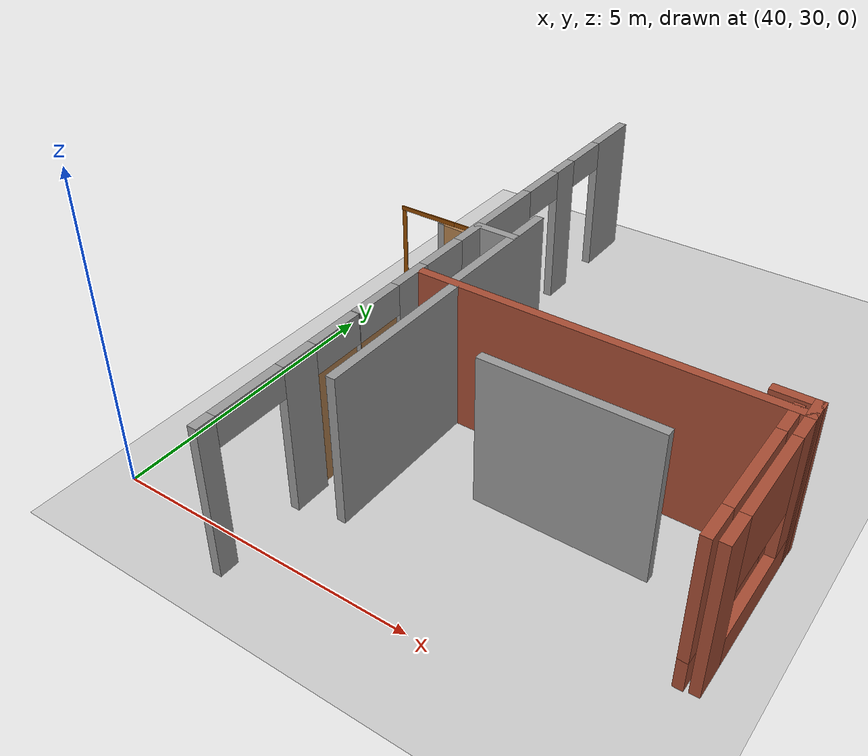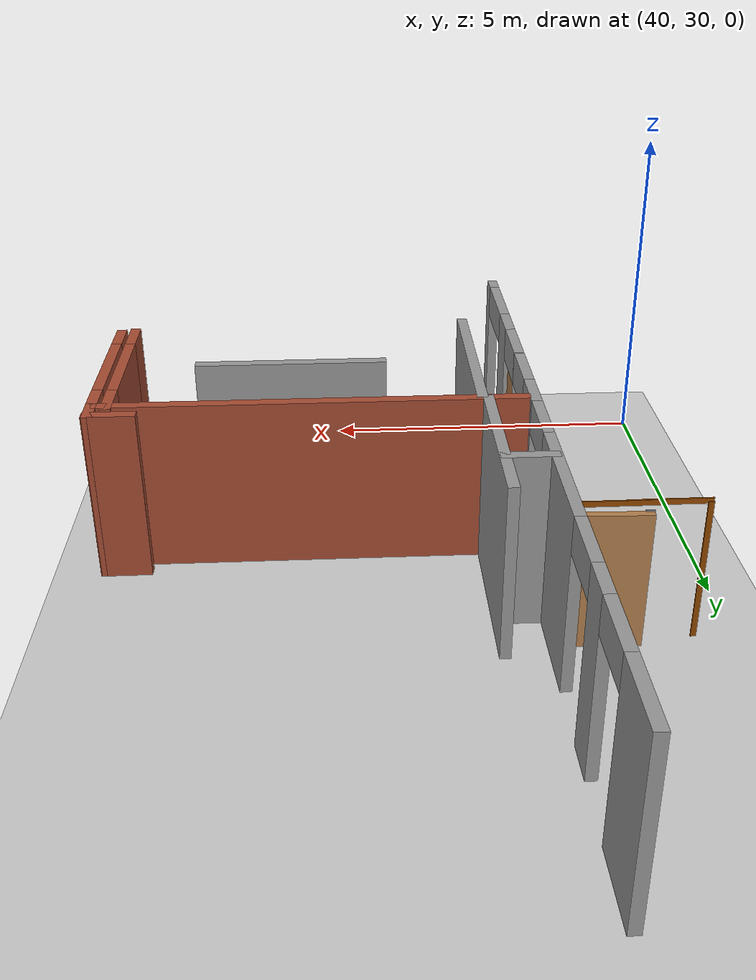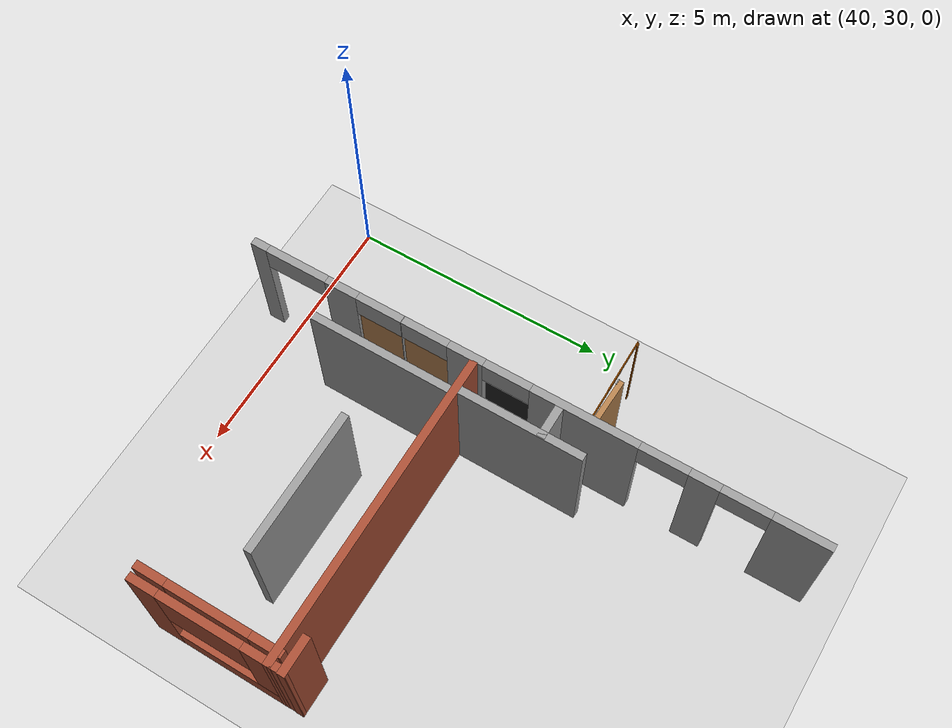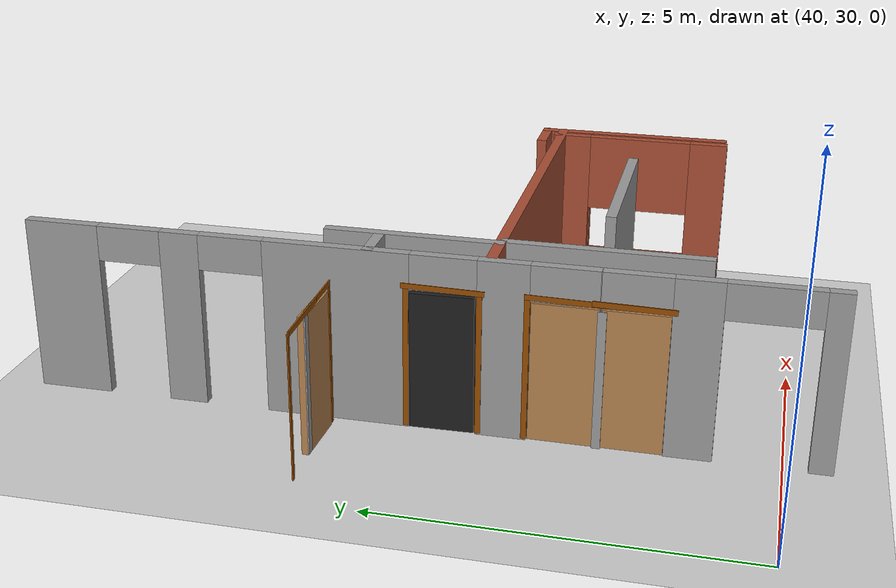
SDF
<sdf version="1.6">
 <world name="default">
  <model name="ground_plane">
   <static>1</static>
   <link name="link">
    <collision name="collision">
     <geometry><plane><normal>0 0 1</normal><size>100 100</size></plane></geometry>
     <surface><friction><ode><mu>100</mu><mu2>50</mu2></ode></friction></surface>
    </collision>
    <visual name="visual">
     <cast_shadows>0</cast_shadows>
     <geometry><plane><normal>0 0 1</normal><size>100 100</size></plane></geometry>
     <material>
      <script><uri>file://media/materials/scripts/gazebo.material</uri><name>Gazebo/Grey</name></script>
     </material>
    </visual>
   </link>
  </model>
  <model name="CVSSP">
   <pose>23.8714 24.094 0 0 -0 0</pose>
   <link name="Wall_213">
    <pose>24.4337 8.48333 0 0 -0 1.5708</pose>
    <visual name="Wall_213_Visual_0">
     <pose>-1.07539 0 1.25 0 -0 0</pose>
     <geometry><box><size>0.546615 0.15 2.5</size></box></geometry>
     <material>
      <script><uri>file://media/materials/scripts/gazebo.material</uri><name>Gazebo/Bricks</name></script>
      <ambient>1 1 1 1</ambient>
     </material>
    </visual>
    <collision name="Wall_213_Collision_0">
     <geometry><box><size>0.546615 0.15 2.5</size></box></geometry>
     <pose>-1.07539 0 1.25 0 -0 0</pose>
    </collision>
    <visual name="Wall_213_Visual_1">
     <pose>0.273308 0 0.25 0 -0 0</pose>
     <geometry><box><size>2.15078 0.15 0.5</size></box></geometry>
     <material>
      <script><uri>file://media/materials/scripts/gazebo.material</uri><name>Gazebo/Bricks</name></script>
      <ambient>1 1 1 1</ambient>
     </material>
    </visual>
    <collision name="Wall_213_Collision_1">
     <geometry><box><size>2.15078 0.15 0.5</size></box></geometry>
     <pose>0.273308 0 0.25 0 -0 0</pose>
    </collision>
    <visual name="Wall_213_Visual_2">
     <pose>1.06771 0 1.5 0 -0 0</pose>
     <geometry><box><size>0.561981 0.15 2</size></box></geometry>
     <material>
      <script><uri>file://media/materials/scripts/gazebo.material</uri><name>Gazebo/Bricks</name></script>
      <ambient>1 1 1 1</ambient>
     </material>
    </visual>
    <collision name="Wall_213_Collision_2">
     <geometry><box><size>0.561981 0.15 2</size></box></geometry>
     <pose>1.06771 0 1.5 0 -0 0</pose>
    </collision>
    <visual name="Wall_213_Visual_3">
     <pose>-0.007683 0 1.9 0 -0 0</pose>
     <geometry><box><size>1.5888 0.15 1.2</size></box></geometry>
     <material>
      <script><uri>file://media/materials/scripts/gazebo.material</uri><name>Gazebo/Bricks</name></script>
      <ambient>1 1 1 1</ambient>
     </material>
    </visual>
    <collision name="Wall_213_Collision_3">
     <geometry><box><size>1.5888 0.15 1.2</size></box></geometry>
     <pose>-0.007683 0 1.9 0 -0 0</pose>
    </collision>
   </link>
   <link name="Wall_214">
    <collision name="Wall_214_Collision">
     <geometry><box><size>5.97381 0.15 2.5</size></box></geometry>
     <pose>0 0 1.25 0 -0 0</pose>
    </collision>
    <visual name="Wall_214_Visual">
     <pose>0 0 1.25 0 -0 0</pose>
     <geometry><box><size>5.97381 0.15 2.5</size></box></geometry>
     <material>
      <script><uri>file://media/materials/scripts/gazebo.material</uri><name>Gazebo/Bricks</name></script>
      <ambient>0.588235 0.588235 0.588235 1</ambient>
     </material>
    </visual>
    <pose>21.5218 9.76806 0 0 -0 3.14006</pose>
   </link>
   <link name="Wall_220">
    <pose>24.2299 8.49507 0 0 0 -1.5708</pose>
    <visual name="Wall_220_Visual_0">
     <pose>-1.08519 0 1.25 0 -0 0</pose>
     <geometry><box><size>0.603103 0.15 2.5</size></box></geometry>
     <material>
      <script><uri>file://media/materials/scripts/gazebo.material</uri><name>Gazebo/Bricks</name></script>
      <ambient>1 1 1 1</ambient>
     </material>
    </visual>
    <collision name="Wall_220_Collision_0">
     <geometry><box><size>0.603103 0.15 2.5</size></box></geometry>
     <pose>-1.08519 0 1.25 0 -0 0</pose>
    </collision>
    <visual name="Wall_220_Visual_1">
     <pose>0.301552 0 0.25 0 -0 0</pose>
     <geometry><box><size>2.17039 0.15 0.5</size></box></geometry>
     <material>
      <script><uri>file://media/materials/scripts/gazebo.material</uri><name>Gazebo/Bricks</name></script>
      <ambient>1 1 1 1</ambient>
     </material>
    </visual>
    <collision name="Wall_220_Collision_1">
     <geometry><box><size>2.17039 0.15 0.5</size></box></geometry>
     <pose>0.301552 0 0.25 0 -0 0</pose>
    </collision>
    <visual name="Wall_220_Visual_2">
     <pose>1.09595 0 1.5 0 -0 0</pose>
     <geometry><box><size>0.581584 0.15 2</size></box></geometry>
     <material>
      <script><uri>file://media/materials/scripts/gazebo.material</uri><name>Gazebo/Bricks</name></script>
      <ambient>1 1 1 1</ambient>
     </material>
    </visual>
    <collision name="Wall_220_Collision_2">
     <geometry><box><size>0.581584 0.15 2</size></box></geometry>
     <pose>1.09595 0 1.5 0 -0 0</pose>
    </collision>
    <visual name="Wall_220_Visual_3">
     <pose>0.010759 0 1.9 0 -0 0</pose>
     <geometry><box><size>1.5888 0.15 1.2</size></box></geometry>
     <material>
      <script><uri>file://media/materials/scripts/gazebo.material</uri><name>Gazebo/Bricks</name></script>
      <ambient>1 1 1 1</ambient>
     </material>
    </visual>
    <collision name="Wall_220_Collision_3">
     <geometry><box><size>1.5888 0.15 1.2</size></box></geometry>
     <pose>0.010759 0 1.9 0 -0 0</pose>
    </collision>
   </link>
   <link name="Wall_224">
    <collision name="Wall_224_Collision">
     <geometry><box><size>2.81007 0.15 2.5</size></box></geometry>
     <pose>0 0 1.25 0 -0 0</pose>
    </collision>
    <visual name="Wall_224_Visual">
     <pose>0 0 1.25 0 -0 0</pose>
     <geometry><box><size>2.81007 0.15 2.5</size></box></geometry>
     <material>
      <script><uri>file://media/materials/scripts/gazebo.material</uri><name>Gazebo/Grey</name></script>
      <ambient>0.588235 0.588235 0.588235 1</ambient>
     </material>
    </visual>
    <pose>19.1823 8.38344 0 0 -0 1.56755</pose>
   </link>
   <link name="Wall_235">
    <collision name="Wall_235_Collision">
     <geometry><box><size>2.48045 0.15 2.5</size></box></geometry>
     <pose>0 0 1.25 0 -0 0</pose>
    </collision>
    <visual name="Wall_235_Visual">
     <pose>0 0 1.25 0 -0 0</pose>
     <geometry><box><size>2.48045 0.15 2.5</size></box></geometry>
     <material>
      <script><uri>file://media/materials/scripts/gazebo.material</uri><name>Gazebo/Grey</name></script>
      <ambient>1 1 1 1</ambient>
     </material>
    </visual>
    <pose>19.1127 10.9507 0 0 0 -1.57453</pose>
   </link>
   <link name="Wall_237">
    <collision name="Wall_237_Collision">
     <geometry><box><size>0.75 0.15 2.5</size></box></geometry>
     <pose>0 0 1.25 0 -0 0</pose>
    </collision>
    <visual name="Wall_237_Visual">
     <pose>0 0 1.25 0 -0 0</pose>
     <geometry><box><size>0.75 0.15 2.5</size></box></geometry>
     <material>
      <script><uri>file://media/materials/scripts/gazebo.material</uri><name>Gazebo/Grey</name></script>
      <ambient>1 1 1 1</ambient>
     </material>
    </visual>
    <pose>18.798 11.4046 0 0 -0 0</pose>
   </link>
   <link name="Wall_239">
    <collision name="Wall_239_Collision">
     <geometry><box><size>0.410984 0.15 2.5</size></box></geometry>
     <pose>0 0 1.25 0 -0 0</pose>
    </collision>
    <visual name="Wall_239_Visual">
     <pose>0 0 1.25 0 -0 0</pose>
     <geometry><box><size>0.410984 0.15 2.5</size></box></geometry>
     <material>
      <script><uri>file://media/materials/scripts/gazebo.material</uri><name>Gazebo/Bricks</name></script>
      <ambient>1 1 1 1</ambient>
     </material>
    </visual>
    <pose>24.4308 9.89408 0 0 -0 1.593</pose>
   </link>
   <link name="Wall_240">
    <collision name="Wall_240_Collision">
     <geometry><box><size>0.714004 0.15 2.5</size></box></geometry>
     <pose>0 0 1.25 0 -0 0</pose>
    </collision>
    <visual name="Wall_240_Visual">
     <pose>0 0 1.25 0 -0 0</pose>
     <geometry><box><size>0.714004 0.15 2.5</size></box></geometry>
     <material>
      <script><uri>file://media/materials/scripts/gazebo.material</uri><name>Gazebo/Bricks</name></script>
      <ambient>1 1 1 1</ambient>
     </material>
    </visual>
    <pose>24.156 10.0241 0 0 0 -3.1399</pose>
   </link>
   <link name="Wall_594">
    <collision name="Wall_594_Collision">
     <geometry><box><size>2.75 0.15 2.5</size></box></geometry>
     <pose>0 0 1.25 0 -0 0</pose>
    </collision>
    <visual name="Wall_594_Visual">
     <pose>0 0 1.25 0 -0 0</pose>
     <geometry><box><size>2.75 0.15 2.5</size></box></geometry>
     <material>
      <script><uri>file://media/materials/scripts/gazebo.material</uri><name>Gazebo/Grey</name></script>
      <ambient>0.588235 0.588235 0.588235 1</ambient>
     </material>
    </visual>
    <pose>21.8103 8.48184 0 0 -0 0</pose>
   </link>
   <link name="Wall_78">
    <pose>18.474 10.7662 0 0 0 -1.57021</pose>
    <visual name="Wall_78_Visual_0">
     <pose>-4.96653 0 1.25 0 -0 0</pose>
     <geometry><box><size>1.05938 0.15 2.5</size></box></geometry>
     <material>
      <script><uri>file://media/materials/scripts/gazebo.material</uri><name>Gazebo/Grey</name></script>
      <ambient>1 1 1 1</ambient>
     </material>
    </visual>
    <collision name="Wall_78_Collision_0">
     <geometry><box><size>1.05938 0.15 2.5</size></box></geometry>
     <pose>-4.96653 0 1.25 0 -0 0</pose>
    </collision>
    <visual name="Wall_78_Visual_1">
     <pose>-3.25946 0 1.25 0 -0 0</pose>
     <geometry><box><size>0.554758 0.15 2.5</size></box></geometry>
     <material>
      <script><uri>file://media/materials/scripts/gazebo.material</uri><name>Gazebo/Grey</name></script>
      <ambient>1 1 1 1</ambient>
     </material>
    </visual>
    <collision name="Wall_78_Collision_1">
     <geometry><box><size>0.554758 0.15 2.5</size></box></geometry>
     <pose>-3.25946 0 1.25 0 -0 0</pose>
    </collision>
    <visual name="Wall_78_Visual_2">
     <pose>-1.07517 0 1.25 0 -0 0</pose>
     <geometry><box><size>2.01383 0.15 2.5</size></box></geometry>
     <material>
      <script><uri>file://media/materials/scripts/gazebo.material</uri><name>Gazebo/Grey</name></script>
      <ambient>1 1 1 1</ambient>
     </material>
    </visual>
    <collision name="Wall_78_Collision_2">
     <geometry><box><size>2.01383 0.15 2.5</size></box></geometry>
     <pose>-1.07517 0 1.25 0 -0 0</pose>
    </collision>
    <visual name="Wall_78_Visual_3">
     <pose>1.17751 0 1.25 0 -0 0</pose>
     <geometry><box><size>0.691523 0.15 2.5</size></box></geometry>
     <material>
      <script><uri>file://media/materials/scripts/gazebo.material</uri><name>Gazebo/Grey</name></script>
      <ambient>1 1 1 1</ambient>
     </material>
    </visual>
    <collision name="Wall_78_Collision_3">
     <geometry><box><size>0.691523 0.15 2.5</size></box></geometry>
     <pose>1.17751 0 1.25 0 -0 0</pose>
    </collision>
    <visual name="Wall_78_Visual_4">
     <pose>2.42807 0 1.25 0 -0 0</pose>
     <geometry><box><size>0.009597 0.15 2.5</size></box></geometry>
     <material>
      <script><uri>file://media/materials/scripts/gazebo.material</uri><name>Gazebo/Grey</name></script>
      <ambient>1 1 1 1</ambient>
     </material>
    </visual>
    <collision name="Wall_78_Collision_4">
     <geometry><box><size>0.009597 0.15 2.5</size></box></geometry>
     <pose>2.42807 0 1.25 0 -0 0</pose>
    </collision>
    <visual name="Wall_78_Visual_5">
     <pose>3.64808 0 1.25 0 -0 0</pose>
     <geometry><box><size>0.630422 0.15 2.5</size></box></geometry>
     <material>
      <script><uri>file://media/materials/scripts/gazebo.material</uri><name>Gazebo/Grey</name></script>
      <ambient>1 1 1 1</ambient>
     </material>
    </visual>
    <collision name="Wall_78_Collision_5">
     <geometry><box><size>0.630422 0.15 2.5</size></box></geometry>
     <pose>3.64808 0 1.25 0 -0 0</pose>
    </collision>
    <visual name="Wall_78_Visual_6">
     <pose>5.33714 0 1.25 0 -0 0</pose>
     <geometry><box><size>0.318161 0.15 2.5</size></box></geometry>
     <material>
      <script><uri>file://media/materials/scripts/gazebo.material</uri><name>Gazebo/Grey</name></script>
      <ambient>1 1 1 1</ambient>
     </material>
    </visual>
    <collision name="Wall_78_Collision_6">
     <geometry><box><size>0.318161 0.15 2.5</size></box></geometry>
     <pose>5.33714 0 1.25 0 -0 0</pose>
    </collision>
    <visual name="Wall_78_Visual_7">
     <pose>-3.98684 0 2.25 0 -0 0</pose>
     <geometry><box><size>0.9 0.15 0.5</size></box></geometry>
     <material>
      <script><uri>file://media/materials/scripts/gazebo.material</uri><name>Gazebo/Grey</name></script>
      <ambient>1 1 1 1</ambient>
     </material>
    </visual>
    <collision name="Wall_78_Collision_7">
     <geometry><box><size>0.9 0.15 0.5</size></box></geometry>
     <pose>-3.98684 0 2.25 0 -0 0</pose>
    </collision>
    <visual name="Wall_78_Visual_8">
     <pose>-2.53208 0 2.25 0 -0 0</pose>
     <geometry><box><size>0.9 0.15 0.5</size></box></geometry>
     <material>
      <script><uri>file://media/materials/scripts/gazebo.material</uri><name>Gazebo/Grey</name></script>
      <ambient>1 1 1 1</ambient>
     </material>
    </visual>
    <collision name="Wall_78_Collision_8">
     <geometry><box><size>0.9 0.15 0.5</size></box></geometry>
     <pose>-2.53208 0 2.25 0 -0 0</pose>
    </collision>
    <visual name="Wall_78_Visual_9">
     <pose>0.381748 0 2.25 0 -0 0</pose>
     <geometry><box><size>0.9 0.15 0.5</size></box></geometry>
     <material>
      <script><uri>file://media/materials/scripts/gazebo.material</uri><name>Gazebo/Grey</name></script>
      <ambient>1 1 1 1</ambient>
     </material>
    </visual>
    <collision name="Wall_78_Collision_9">
     <geometry><box><size>0.9 0.15 0.5</size></box></geometry>
     <pose>0.381748 0 2.25 0 -0 0</pose>
    </collision>
    <visual name="Wall_78_Visual_10">
     <pose>1.97327 0 2.25 0 -0 0</pose>
     <geometry><box><size>0.9 0.15 0.5</size></box></geometry>
     <material>
      <script><uri>file://media/materials/scripts/gazebo.material</uri><name>Gazebo/Grey</name></script>
      <ambient>1 1 1 1</ambient>
     </material>
    </visual>
    <collision name="Wall_78_Collision_10">
     <geometry><box><size>0.9 0.15 0.5</size></box></geometry>
     <pose>1.97327 0 2.25 0 -0 0</pose>
    </collision>
    <visual name="Wall_78_Visual_11">
     <pose>2.88287 0 2.25 0 -0 0</pose>
     <geometry><box><size>0.9 0.15 0.5</size></box></geometry>
     <material>
      <script><uri>file://media/materials/scripts/gazebo.material</uri><name>Gazebo/Grey</name></script>
      <ambient>1 1 1 1</ambient>
     </material>
    </visual>
    <collision name="Wall_78_Collision_11">
     <geometry><box><size>0.9 0.15 0.5</size></box></geometry>
     <pose>2.88287 0 2.25 0 -0 0</pose>
    </collision>
    <visual name="Wall_78_Visual_12">
     <pose>4.57067 0 2.25 0 -0 0</pose>
     <geometry><box><size>1.21477 0.15 0.5</size></box></geometry>
     <material>
      <script><uri>file://media/materials/scripts/gazebo.material</uri><name>Gazebo/Grey</name></script>
      <ambient>1 1 1 1</ambient>
     </material>
    </visual>
    <collision name="Wall_78_Collision_12">
     <geometry><box><size>1.21477 0.15 0.5</size></box></geometry>
     <pose>4.57067 0 2.25 0 -0 0</pose>
    </collision>
   </link>
   <static>1</static>
  </model>
  <model name="basic_ply_door_corrected_clone_clone_clone_1">
   <link name="link">
    <pose>-0 0 1.00385 0 -0 0</pose>
    <inertial>
     <mass>0.5167</mass>
     <inertia>
      <ixx>0.00086117</ixx>
      <ixy>0</ixy>
      <ixz>0</ixz>
      <iyy>0.00086117</iyy>
      <iyz>0</iyz>
      <izz>0.00086117</izz>
     </inertia>
    </inertial>
    <gravity>0</gravity>
    <visual name="visual">
     <geometry><box><size>0.88 0.1 1.96</size></box></geometry>
     <material>
      <script><uri>file://media/materials/scripts/gazebo.material</uri><name>Gazebo/Wood</name></script>
      <shader type="pixel"><normal_map>__default__</normal_map></shader>
      <ambient>1 1 1 1</ambient>
      <diffuse>1 1 1 1</diffuse>
      <specular>0.2 0.2 0.2 1</specular>
      <emissive>0 0 0 1</emissive>
     </material>
    </visual>
    <collision name="collision">
     <geometry><box><size>0.88 0.1 1.96</size></box></geometry>
     <surface>
      <friction>
       <ode><mu>1</mu><mu2>1</mu2><fdir1>0 0 0</fdir1><slip1>0</slip1><slip2>0</slip2></ode>
       <torsional>
        <coefficient>1</coefficient>
        <patch_radius>0</patch_radius>
        <surface_radius>0.01</surface_radius>
        <use_patch_radius>0</use_patch_radius>
        <ode><slip>0</slip></ode>
       </torsional>
      </friction>
      <bounce><restitution_coefficient>0</restitution_coefficient><threshold>1e+06</threshold></bounce>
      <contact>
       <collide_without_contact>0</collide_without_contact>
       <collide_without_contact_bitmask>1</collide_without_contact_bitmask>
       <collide_bitmask>1</collide_bitmask>
       <ode>
        <soft_cfm>0</soft_cfm>
        <soft_erp>0.2</soft_erp>
        <kp>100000</kp>
        <kd>100</kd>
        <max_vel>100</max_vel>
        <min_depth>0.001</min_depth>
       </ode>
       <bullet>
        <split_impulse>1</split_impulse>
        <split_impulse_penetration_threshold>-0.01</split_impulse_penetration_threshold>
        <soft_cfm>0</soft_cfm>
        <soft_erp>0.2</soft_erp>
        <kp>100000</kp>
        <kd>100</kd>
       </bullet>
      </contact>
     </surface>
    </collision>
   </link>
   <static>1</static>
   <pose>41.6497 36.0398 -0.036806 0 0 -0.036583</pose>
  </model>
  <model name="metal_door">
   <link name="link">
    <inertial>
     <mass>1</mass>
     <inertia>
      <ixx>0.166667</ixx>
      <ixy>0</ixy>
      <ixz>0</ixz>
      <iyy>0.166667</iyy>
      <iyz>0</iyz>
      <izz>0.166667</izz>
     </inertia>
    </inertial>
    <gravity>0</gravity>
    <visual name="visual">
     <geometry><box><size>0.100297 0.870347 1.94787</size></box></geometry>
     <material>
      <script><name>Gazebo/Black</name><uri>file://media/materials/scripts/gazebo.material</uri></script>
      <shader type="pixel"><normal_map>__default__</normal_map></shader>
      <ambient>0.01 0.001 0.001 1</ambient>
      <diffuse>0.7 0.7 0.7 1</diffuse>
      <specular>0.01 0.01 0.01 1</specular>
      <emissive>0 0 0 1</emissive>
     </material>
    </visual>
    <collision name="collision">
     <geometry><box><size>0.100297 0.870347 1.94787</size></box></geometry>
     <surface>
      <friction>
       <ode><mu>1</mu><mu2>1</mu2><fdir1>0 0 0</fdir1><slip1>0</slip1><slip2>0</slip2></ode>
       <torsional>
        <coefficient>1</coefficient>
        <patch_radius>0</patch_radius>
        <surface_radius>0</surface_radius>
        <use_patch_radius>1</use_patch_radius>
        <ode><slip>0</slip></ode>
       </torsional>
      </friction>
      <bounce><restitution_coefficient>0</restitution_coefficient><threshold>1e+06</threshold></bounce>
      <contact>
       <collide_without_contact>0</collide_without_contact>
       <collide_without_contact_bitmask>1</collide_without_contact_bitmask>
       <collide_bitmask>1</collide_bitmask>
       <ode>
        <soft_cfm>0</soft_cfm>
        <soft_erp>0.2</soft_erp>
        <kp>1e+13</kp>
        <kd>1</kd>
        <max_vel>0.01</max_vel>
        <min_depth>0</min_depth>
       </ode>
       <bullet>
        <split_impulse>1</split_impulse>
        <split_impulse_penetration_threshold>-0.01</split_impulse_penetration_threshold>
        <soft_cfm>0</soft_cfm>
        <soft_erp>0.2</soft_erp>
        <kp>1e+13</kp>
        <kd>1</kd>
       </bullet>
      </contact>
     </surface>
    </collision>
   </link>
   <static>1</static>
   <pose>42.2821 34.4796 1.00438 -0.004669 -0.001302 0.01235</pose>
  </model>
  <model name="basic_ply_door_corrected_clone_0_clone_clone_2">
   <link name="link">
    <pose>-0 0 1.00385 0 -0 0</pose>
    <inertial>
     <mass>0.5167</mass>
     <inertia>
      <ixx>0.00086117</ixx>
      <ixy>0</ixy>
      <ixz>0</ixz>
      <iyy>0.00086117</iyy>
      <iyz>0</iyz>
      <izz>0.00086117</izz>
     </inertia>
    </inertial>
    <gravity>0</gravity>
    <visual name="visual">
     <geometry><box><size>0.88 0.1 1.96</size></box></geometry>
     <material>
      <script><uri>file://media/materials/scripts/gazebo.material</uri><name>Gazebo/Wood</name></script>
      <shader type="pixel"><normal_map>__default__</normal_map></shader>
      <ambient>1 1 1 1</ambient>
      <diffuse>1 1 1 1</diffuse>
      <specular>0.2 0.2 0.2 1</specular>
      <emissive>0 0 0 1</emissive>
     </material>
    </visual>
    <collision name="collision">
     <geometry><box><size>0.88 0.1 1.96</size></box></geometry>
     <surface>
      <friction>
       <ode><mu>1</mu><mu2>1</mu2><fdir1>0 0 0</fdir1><slip1>0</slip1><slip2>0</slip2></ode>
       <torsional>
        <coefficient>1</coefficient>
        <patch_radius>0</patch_radius>
        <surface_radius>0.01</surface_radius>
        <use_patch_radius>0</use_patch_radius>
        <ode><slip>0</slip></ode>
       </torsional>
      </friction>
      <bounce><restitution_coefficient>0</restitution_coefficient><threshold>1e+06</threshold></bounce>
      <contact>
       <collide_without_contact>0</collide_without_contact>
       <collide_without_contact_bitmask>1</collide_without_contact_bitmask>
       <collide_bitmask>1</collide_bitmask>
       <ode>
        <soft_cfm>0</soft_cfm>
        <soft_erp>0.2</soft_erp>
        <kp>100000</kp>
        <kd>100</kd>
        <max_vel>100</max_vel>
        <min_depth>0.001</min_depth>
       </ode>
       <bullet>
        <split_impulse>1</split_impulse>
        <split_impulse_penetration_threshold>-0.01</split_impulse_penetration_threshold>
        <soft_cfm>0</soft_cfm>
        <soft_erp>0.2</soft_erp>
        <kp>100000</kp>
        <kd>100</kd>
       </bullet>
      </contact>
     </surface>
    </collision>
   </link>
   <static>1</static>
   <pose>42.3174 32.8788 -0.00101 0 -0 1.56379</pose>
  </model>
  <model name="basic_ply_door_corrected_clone_0_clone_clone_3">
   <link name="link">
    <pose>-0 0 1.00385 0 -0 0</pose>
    <inertial>
     <mass>0.5167</mass>
     <inertia>
      <ixx>0.00086117</ixx>
      <ixy>0</ixy>
      <ixz>0</ixz>
      <iyy>0.00086117</iyy>
      <iyz>0</iyz>
      <izz>0.00086117</izz>
     </inertia>
    </inertial>
    <gravity>0</gravity>
    <visual name="visual">
     <geometry><box><size>0.88 0.1 1.96</size></box></geometry>
     <material>
      <script><uri>file://media/materials/scripts/gazebo.material</uri><name>Gazebo/Wood</name></script>
      <shader type="pixel"><normal_map>__default__</normal_map></shader>
      <ambient>1 1 1 1</ambient>
      <diffuse>1 1 1 1</diffuse>
      <specular>0.2 0.2 0.2 1</specular>
      <emissive>0 0 0 1</emissive>
     </material>
    </visual>
    <collision name="collision">
     <geometry><box><size>0.88 0.1 1.96</size></box></geometry>
     <surface>
      <friction>
       <ode><mu>1</mu><mu2>1</mu2><fdir1>0 0 0</fdir1><slip1>0</slip1><slip2>0</slip2></ode>
       <torsional>
        <coefficient>1</coefficient>
        <patch_radius>0</patch_radius>
        <surface_radius>0.01</surface_radius>
        <use_patch_radius>0</use_patch_radius>
        <ode><slip>0</slip></ode>
       </torsional>
      </friction>
      <bounce><restitution_coefficient>0</restitution_coefficient><threshold>1e+06</threshold></bounce>
      <contact>
       <collide_without_contact>0</collide_without_contact>
       <collide_without_contact_bitmask>1</collide_without_contact_bitmask>
       <collide_bitmask>1</collide_bitmask>
       <ode>
        <soft_cfm>0</soft_cfm>
        <soft_erp>0.2</soft_erp>
        <kp>100000</kp>
        <kd>100</kd>
        <max_vel>100</max_vel>
        <min_depth>0.001</min_depth>
       </ode>
       <bullet>
        <split_impulse>1</split_impulse>
        <split_impulse_penetration_threshold>-0.01</split_impulse_penetration_threshold>
        <soft_cfm>0</soft_cfm>
        <soft_erp>0.2</soft_erp>
        <kp>100000</kp>
        <kd>100</kd>
       </bullet>
      </contact>
     </surface>
    </collision>
   </link>
   <static>1</static>
   <pose>42.3101 31.9698 -0.00101 0 -0 1.56379</pose>
  </model>
  <model name="metal_hinge_clone">
   <link name="link">
    <inertial>
     <mass>1</mass>
     <inertia>
      <ixx>0.166667</ixx>
      <ixy>0</ixy>
      <ixz>0</ixz>
      <iyy>0.166667</iyy>
      <iyz>0</iyz>
      <izz>0.166667</izz>
     </inertia>
    </inertial>
    <visual name="visual">
     <geometry><box><size>0.018685 0.118108 1.95261</size></box></geometry>
     <material>
      <script><name>Gazebo/Grey</name><uri>file://media/materials/scripts/gazebo.material</uri></script>
      <shader type="pixel"/>
     </material>
    </visual>
    <collision name="collision">
     <geometry><box><size>0.018685 0.118108 1.95261</size></box></geometry>
     <surface>
      <friction>
       <ode><mu>1</mu><mu2>1</mu2><fdir1>0 0 0</fdir1><slip1>0</slip1><slip2>0</slip2></ode>
       <torsional>
        <coefficient>1</coefficient>
        <patch_radius>0</patch_radius>
        <surface_radius>0</surface_radius>
        <use_patch_radius>1</use_patch_radius>
        <ode><slip>0</slip></ode>
       </torsional>
      </friction>
      <bounce><restitution_coefficient>0</restitution_coefficient><threshold>1e+06</threshold></bounce>
      <contact>
       <collide_without_contact>0</collide_without_contact>
       <collide_without_contact_bitmask>1</collide_without_contact_bitmask>
       <collide_bitmask>1</collide_bitmask>
       <ode>
        <soft_cfm>0</soft_cfm>
        <soft_erp>0.2</soft_erp>
        <kp>1e+13</kp>
        <kd>1</kd>
        <max_vel>0.01</max_vel>
        <min_depth>0</min_depth>
       </ode>
       <bullet>
        <split_impulse>1</split_impulse>
        <split_impulse_penetration_threshold>-0.01</split_impulse_penetration_threshold>
        <soft_cfm>0</soft_cfm>
        <soft_erp>0.2</soft_erp>
        <kp>1e+13</kp>
        <kd>1</kd>
       </bullet>
      </contact>
     </surface>
    </collision>
   </link>
   <static>1</static>
   <pose>42.2579 32.4014 0.984523 0 -0 0</pose>
  </model>
  <model name="metal_hinge_clone_2_clone">
   <link name="link">
    <inertial>
     <mass>1</mass>
     <inertia>
      <ixx>0.166667</ixx>
      <ixy>0</ixy>
      <ixz>0</ixz>
      <iyy>0.166667</iyy>
      <iyz>0</iyz>
      <izz>0.166667</izz>
     </inertia>
    </inertial>
    <visual name="visual">
     <geometry><box><size>0.018685 0.118108 1.95261</size></box></geometry>
     <material>
      <script><name>Gazebo/Grey</name><uri>file://media/materials/scripts/gazebo.material</uri></script>
      <shader type="pixel"/>
     </material>
    </visual>
    <collision name="collision">
     <geometry><box><size>0.018685 0.118108 1.95261</size></box></geometry>
     <surface>
      <friction>
       <ode><mu>1</mu><mu2>1</mu2><fdir1>0 0 0</fdir1><slip1>0</slip1><slip2>0</slip2></ode>
       <torsional>
        <coefficient>1</coefficient>
        <patch_radius>0</patch_radius>
        <surface_radius>0</surface_radius>
        <use_patch_radius>1</use_patch_radius>
        <ode><slip>0</slip></ode>
       </torsional>
      </friction>
      <bounce><restitution_coefficient>0</restitution_coefficient><threshold>1e+06</threshold></bounce>
      <contact>
       <collide_without_contact>0</collide_without_contact>
       <collide_without_contact_bitmask>1</collide_without_contact_bitmask>
       <collide_bitmask>1</collide_bitmask>
       <ode>
        <soft_cfm>0</soft_cfm>
        <soft_erp>0.2</soft_erp>
        <kp>1e+13</kp>
        <kd>1</kd>
        <max_vel>0.01</max_vel>
        <min_depth>0</min_depth>
       </ode>
       <bullet>
        <split_impulse>1</split_impulse>
        <split_impulse_penetration_threshold>-0.01</split_impulse_penetration_threshold>
        <soft_cfm>0</soft_cfm>
        <soft_erp>0.2</soft_erp>
        <kp>1e+13</kp>
        <kd>1</kd>
       </bullet>
      </contact>
     </surface>
    </collision>
   </link>
   <static>1</static>
   <pose>41.2559 36.0028 0.984523 0 0 -1.58649</pose>
  </model>
  <model name="oak_frame_0_clone_clone_4">
   <link name="link">
    <inertial>
     <mass>1</mass>
     <inertia>
      <ixx>0.166667</ixx>
      <ixy>0</ixy>
      <ixz>0</ixz>
      <iyy>0.166667</iyy>
      <iyz>0</iyz>
      <izz>0.166667</izz>
     </inertia>
    </inertial>
    <visual name="visual">
     <geometry><box><size>0.018685 0.076446 2.026</size></box></geometry>
     <material>
      <script><name>Gazebo/Grey</name><uri>file://media/materials/scripts/gazebo.material</uri></script>
      <shader type="pixel"><normal_map>__default__</normal_map></shader>
      <diffuse>0.58 0.29 0 0</diffuse>
      <ambient>0.58 0.29 0 1</ambient>
      <specular>0.01 0.01 0.01 1</specular>
      <emissive>0 0 0 1</emissive>
     </material>
    </visual>
    <collision name="collision">
     <geometry><box><size>0.018685 0.076446 2.026</size></box></geometry>
     <surface>
      <friction>
       <ode><mu>1</mu><mu2>1</mu2><fdir1>0 0 0</fdir1><slip1>0</slip1><slip2>0</slip2></ode>
       <torsional>
        <coefficient>1</coefficient>
        <patch_radius>0</patch_radius>
        <surface_radius>0</surface_radius>
        <use_patch_radius>1</use_patch_radius>
        <ode><slip>0</slip></ode>
       </torsional>
      </friction>
      <bounce><restitution_coefficient>0</restitution_coefficient><threshold>1e+06</threshold></bounce>
      <contact>
       <collide_without_contact>0</collide_without_contact>
       <collide_without_contact_bitmask>1</collide_without_contact_bitmask>
       <collide_bitmask>1</collide_bitmask>
       <ode>
        <soft_cfm>0</soft_cfm>
        <soft_erp>0.2</soft_erp>
        <kp>1e+13</kp>
        <kd>1</kd>
        <max_vel>0.01</max_vel>
        <min_depth>0</min_depth>
       </ode>
       <bullet>
        <split_impulse>1</split_impulse>
        <split_impulse_penetration_threshold>-0.01</split_impulse_penetration_threshold>
        <soft_cfm>0</soft_cfm>
        <soft_erp>0.2</soft_erp>
        <kp>1e+13</kp>
        <kd>1</kd>
       </bullet>
      </contact>
     </surface>
    </collision>
   </link>
   <static>1</static>
   <pose>42.2756 33.3676 1.03242 0 -0 0</pose>
  </model>
  <model name="oak_frame_0_clone_clone_5">
   <link name="link">
    <inertial>
     <mass>1</mass>
     <inertia>
      <ixx>0.166667</ixx>
      <ixy>0</ixy>
      <ixz>0</ixz>
      <iyy>0.166667</iyy>
      <iyz>0</iyz>
      <izz>0.166667</izz>
     </inertia>
    </inertial>
    <visual name="visual">
     <geometry><box><size>0.018685 0.076446 2.026</size></box></geometry>
     <material>
      <script><name>Gazebo/Grey</name><uri>file://media/materials/scripts/gazebo.material</uri></script>
      <shader type="pixel"><normal_map>__default__</normal_map></shader>
      <diffuse>0.58 0.29 0 0</diffuse>
      <ambient>0.58 0.29 0 1</ambient>
      <specular>0.01 0.01 0.01 1</specular>
      <emissive>0 0 0 1</emissive>
     </material>
    </visual>
    <collision name="collision">
     <geometry><box><size>0.018685 0.076446 2.026</size></box></geometry>
     <surface>
      <friction>
       <ode><mu>1</mu><mu2>1</mu2><fdir1>0 0 0</fdir1><slip1>0</slip1><slip2>0</slip2></ode>
       <torsional>
        <coefficient>1</coefficient>
        <patch_radius>0</patch_radius>
        <surface_radius>0</surface_radius>
        <use_patch_radius>1</use_patch_radius>
        <ode><slip>0</slip></ode>
       </torsional>
      </friction>
      <bounce><restitution_coefficient>0</restitution_coefficient><threshold>1e+06</threshold></bounce>
      <contact>
       <collide_without_contact>0</collide_without_contact>
       <collide_without_contact_bitmask>1</collide_without_contact_bitmask>
       <collide_bitmask>1</collide_bitmask>
       <ode>
        <soft_cfm>0</soft_cfm>
        <soft_erp>0.2</soft_erp>
        <kp>1e+13</kp>
        <kd>1</kd>
        <max_vel>0.01</max_vel>
        <min_depth>0</min_depth>
       </ode>
       <bullet>
        <split_impulse>1</split_impulse>
        <split_impulse_penetration_threshold>-0.01</split_impulse_penetration_threshold>
        <soft_cfm>0</soft_cfm>
        <soft_erp>0.2</soft_erp>
        <kp>1e+13</kp>
        <kd>1</kd>
       </bullet>
      </contact>
     </surface>
    </collision>
   </link>
   <static>1</static>
   <pose>42.2737 33.9923 1.03242 0 -0 0</pose>
  </model>
  <model name="oak_frame_0_clone_clone_6">
   <link name="link">
    <inertial>
     <mass>1</mass>
     <inertia>
      <ixx>0.166667</ixx>
      <ixy>0</ixy>
      <ixz>0</ixz>
      <iyy>0.166667</iyy>
      <iyz>0</iyz>
      <izz>0.166667</izz>
     </inertia>
    </inertial>
    <visual name="visual">
     <geometry><box><size>0.018685 0.076446 2.026</size></box></geometry>
     <material>
      <script><name>Gazebo/Grey</name><uri>file://media/materials/scripts/gazebo.material</uri></script>
      <shader type="pixel"><normal_map>__default__</normal_map></shader>
      <diffuse>0.58 0.29 0 0</diffuse>
      <ambient>0.58 0.29 0 1</ambient>
      <specular>0.01 0.01 0.01 1</specular>
      <emissive>0 0 0 1</emissive>
     </material>
    </visual>
    <collision name="collision">
     <geometry><box><size>0.018685 0.076446 2.026</size></box></geometry>
     <surface>
      <friction>
       <ode><mu>1</mu><mu2>1</mu2><fdir1>0 0 0</fdir1><slip1>0</slip1><slip2>0</slip2></ode>
       <torsional>
        <coefficient>1</coefficient>
        <patch_radius>0</patch_radius>
        <surface_radius>0</surface_radius>
        <use_patch_radius>1</use_patch_radius>
        <ode><slip>0</slip></ode>
       </torsional>
      </friction>
      <bounce><restitution_coefficient>0</restitution_coefficient><threshold>1e+06</threshold></bounce>
      <contact>
       <collide_without_contact>0</collide_without_contact>
       <collide_without_contact_bitmask>1</collide_without_contact_bitmask>
       <collide_bitmask>1</collide_bitmask>
       <ode>
        <soft_cfm>0</soft_cfm>
        <soft_erp>0.2</soft_erp>
        <kp>1e+13</kp>
        <kd>1</kd>
        <max_vel>0.01</max_vel>
        <min_depth>0</min_depth>
       </ode>
       <bullet>
        <split_impulse>1</split_impulse>
        <split_impulse_penetration_threshold>-0.01</split_impulse_penetration_threshold>
        <soft_cfm>0</soft_cfm>
        <soft_erp>0.2</soft_erp>
        <kp>1e+13</kp>
        <kd>1</kd>
       </bullet>
      </contact>
     </surface>
    </collision>
   </link>
   <static>1</static>
   <pose>42.2708 34.974 1.03242 0 -0 0</pose>
  </model>
  <model name="oak_frame_0_clone_0_clone_3">
   <link name="link">
    <inertial>
     <mass>1</mass>
     <inertia>
      <ixx>0.166667</ixx>
      <ixy>0</ixy>
      <ixz>0</ixz>
      <iyy>0.166667</iyy>
      <iyz>0</iyz>
      <izz>0.166667</izz>
     </inertia>
    </inertial>
    <visual name="visual">
     <geometry><box><size>0.018685 0.076446 1.08038</size></box></geometry>
     <material>
      <script><name>Gazebo/Grey</name><uri>file://media/materials/scripts/gazebo.material</uri></script>
      <shader type="pixel"><normal_map>__default__</normal_map></shader>
      <diffuse>0.58 0.29 0 0</diffuse>
      <ambient>0.58 0.29 0 1</ambient>
      <specular>0.01 0.01 0.01 1</specular>
      <emissive>0 0 0 1</emissive>
     </material>
    </visual>
    <collision name="collision">
     <geometry><box><size>0.018685 0.076446 1.08038</size></box></geometry>
     <surface>
      <friction>
       <ode><mu>1</mu><mu2>1</mu2><fdir1>0 0 0</fdir1><slip1>0</slip1><slip2>0</slip2></ode>
       <torsional>
        <coefficient>1</coefficient>
        <patch_radius>0</patch_radius>
        <surface_radius>0</surface_radius>
        <use_patch_radius>1</use_patch_radius>
        <ode><slip>0</slip></ode>
       </torsional>
      </friction>
      <bounce><restitution_coefficient>0</restitution_coefficient><threshold>1e+06</threshold></bounce>
      <contact>
       <collide_without_contact>0</collide_without_contact>
       <collide_without_contact_bitmask>1</collide_without_contact_bitmask>
       <collide_bitmask>1</collide_bitmask>
       <ode>
        <soft_cfm>0</soft_cfm>
        <soft_erp>0.2</soft_erp>
        <kp>1e+13</kp>
        <kd>1</kd>
        <max_vel>0.01</max_vel>
        <min_depth>0</min_depth>
       </ode>
       <bullet>
        <split_impulse>1</split_impulse>
        <split_impulse_penetration_threshold>-0.01</split_impulse_penetration_threshold>
        <soft_cfm>0</soft_cfm>
        <soft_erp>0.2</soft_erp>
        <kp>1e+13</kp>
        <kd>1</kd>
       </bullet>
      </contact>
     </surface>
    </collision>
   </link>
   <static>1</static>
   <pose>42.262 31.9964 2.05002 -1.55236 0 0</pose>
  </model>
  <model name="oak_frame_0_clone_0_clone_4">
   <link name="link">
    <inertial>
     <mass>1</mass>
     <inertia>
      <ixx>0.166667</ixx>
      <ixy>0</ixy>
      <ixz>0</ixz>
      <iyy>0.166667</iyy>
      <iyz>0</iyz>
      <izz>0.166667</izz>
     </inertia>
    </inertial>
    <visual name="visual">
     <geometry><box><size>0.018685 0.076446 1.08038</size></box></geometry>
     <material>
      <script><name>Gazebo/Grey</name><uri>file://media/materials/scripts/gazebo.material</uri></script>
      <shader type="pixel"><normal_map>__default__</normal_map></shader>
      <diffuse>0.58 0.29 0 0</diffuse>
      <ambient>0.58 0.29 0 1</ambient>
      <specular>0.01 0.01 0.01 1</specular>
      <emissive>0 0 0 1</emissive>
     </material>
    </visual>
    <collision name="collision">
     <geometry><box><size>0.018685 0.076446 1.08038</size></box></geometry>
     <surface>
      <friction>
       <ode><mu>1</mu><mu2>1</mu2><fdir1>0 0 0</fdir1><slip1>0</slip1><slip2>0</slip2></ode>
       <torsional>
        <coefficient>1</coefficient>
        <patch_radius>0</patch_radius>
        <surface_radius>0</surface_radius>
        <use_patch_radius>1</use_patch_radius>
        <ode><slip>0</slip></ode>
       </torsional>
      </friction>
      <bounce><restitution_coefficient>0</restitution_coefficient><threshold>1e+06</threshold></bounce>
      <contact>
       <collide_without_contact>0</collide_without_contact>
       <collide_without_contact_bitmask>1</collide_without_contact_bitmask>
       <collide_bitmask>1</collide_bitmask>
       <ode>
        <soft_cfm>0</soft_cfm>
        <soft_erp>0.2</soft_erp>
        <kp>1e+13</kp>
        <kd>1</kd>
        <max_vel>0.01</max_vel>
        <min_depth>0</min_depth>
       </ode>
       <bullet>
        <split_impulse>1</split_impulse>
        <split_impulse_penetration_threshold>-0.01</split_impulse_penetration_threshold>
        <soft_cfm>0</soft_cfm>
        <soft_erp>0.2</soft_erp>
        <kp>1e+13</kp>
        <kd>1</kd>
       </bullet>
      </contact>
     </surface>
    </collision>
   </link>
   <static>1</static>
   <pose>42.2743 32.867 2.05002 -1.55236 0 0</pose>
  </model>
  <model name="oak_frame_0_clone_0_clone_5">
   <link name="link">
    <inertial>
     <mass>1</mass>
     <inertia>
      <ixx>0.166667</ixx>
      <ixy>0</ixy>
      <ixz>0</ixz>
      <iyy>0.166667</iyy>
      <iyz>0</iyz>
      <izz>0.166667</izz>
     </inertia>
    </inertial>
    <visual name="visual">
     <geometry><box><size>0.018685 0.076446 1.11805</size></box></geometry>
     <material>
      <script><name>Gazebo/Grey</name><uri>file://media/materials/scripts/gazebo.material</uri></script>
      <shader type="pixel"><normal_map>__default__</normal_map></shader>
      <diffuse>0.58 0.29 0 0</diffuse>
      <ambient>0.58 0.29 0 1</ambient>
      <specular>0.01 0.01 0.01 1</specular>
      <emissive>0 0 0 1</emissive>
     </material>
    </visual>
    <collision name="collision">
     <geometry><box><size>0.018685 0.076446 1.11805</size></box></geometry>
     <surface>
      <friction>
       <ode><mu>1</mu><mu2>1</mu2><fdir1>0 0 0</fdir1><slip1>0</slip1><slip2>0</slip2></ode>
       <torsional>
        <coefficient>1</coefficient>
        <patch_radius>0</patch_radius>
        <surface_radius>0</surface_radius>
        <use_patch_radius>1</use_patch_radius>
        <ode><slip>0</slip></ode>
       </torsional>
      </friction>
      <bounce><restitution_coefficient>0</restitution_coefficient><threshold>1e+06</threshold></bounce>
      <contact>
       <collide_without_contact>0</collide_without_contact>
       <collide_without_contact_bitmask>1</collide_without_contact_bitmask>
       <collide_bitmask>1</collide_bitmask>
       <ode>
        <soft_cfm>0</soft_cfm>
        <soft_erp>0.2</soft_erp>
        <kp>1e+13</kp>
        <kd>1</kd>
        <max_vel>0.01</max_vel>
        <min_depth>0</min_depth>
       </ode>
       <bullet>
        <split_impulse>1</split_impulse>
        <split_impulse_penetration_threshold>-0.01</split_impulse_penetration_threshold>
        <soft_cfm>0</soft_cfm>
        <soft_erp>0.2</soft_erp>
        <kp>1e+13</kp>
        <kd>1</kd>
       </bullet>
      </contact>
     </surface>
    </collision>
   </link>
   <static>1</static>
   <pose>42.2673 34.4836 2.04981 -1.55236 0 0</pose>
  </model>
  <model name="oak_frame_0_clone_clone_7_clone_clone_1">
   <link name="link">
    <inertial>
     <mass>1</mass>
     <inertia>
      <ixx>0.166667</ixx>
      <ixy>0</ixy>
      <ixz>0</ixz>
      <iyy>0.166667</iyy>
      <iyz>0</iyz>
      <izz>0.166667</izz>
     </inertia>
    </inertial>
    <visual name="visual">
     <geometry><box><size>0.018685 0.076446 2.026</size></box></geometry>
     <material>
      <script><name>Gazebo/Grey</name><uri>file://media/materials/scripts/gazebo.material</uri></script>
      <shader type="pixel"><normal_map>__default__</normal_map></shader>
      <diffuse>0.58 0.29 0 0</diffuse>
      <ambient>0.58 0.29 0 1</ambient>
      <specular>0.01 0.01 0.01 1</specular>
      <emissive>0 0 0 1</emissive>
     </material>
    </visual>
    <collision name="collision">
     <geometry><box><size>0.018685 0.076446 2.026</size></box></geometry>
     <surface>
      <friction>
       <ode><mu>1</mu><mu2>1</mu2><fdir1>0 0 0</fdir1><slip1>0</slip1><slip2>0</slip2></ode>
       <torsional>
        <coefficient>1</coefficient>
        <patch_radius>0</patch_radius>
        <surface_radius>0</surface_radius>
        <use_patch_radius>1</use_patch_radius>
        <ode><slip>0</slip></ode>
       </torsional>
      </friction>
      <bounce><restitution_coefficient>0</restitution_coefficient><threshold>1e+06</threshold></bounce>
      <contact>
       <collide_without_contact>0</collide_without_contact>
       <collide_without_contact_bitmask>1</collide_without_contact_bitmask>
       <collide_bitmask>1</collide_bitmask>
       <ode>
        <soft_cfm>0</soft_cfm>
        <soft_erp>0.2</soft_erp>
        <kp>1e+13</kp>
        <kd>1</kd>
        <max_vel>0.01</max_vel>
        <min_depth>0</min_depth>
       </ode>
       <bullet>
        <split_impulse>1</split_impulse>
        <split_impulse_penetration_threshold>-0.01</split_impulse_penetration_threshold>
        <soft_cfm>0</soft_cfm>
        <soft_erp>0.2</soft_erp>
        <kp>1e+13</kp>
        <kd>1</kd>
       </bullet>
      </contact>
     </surface>
    </collision>
   </link>
   <static>1</static>
   <pose>40.5084 35.9797 1.03242 0 -0 1.64784</pose>
  </model>
  <model name="oak_frame_0_clone_0_clone_8_clone_0">
   <link name="link">
    <inertial>
     <mass>1</mass>
     <inertia>
      <ixx>0.166667</ixx>
      <ixy>0</ixy>
      <ixz>0</ixz>
      <iyy>0.166667</iyy>
      <iyz>0</iyz>
      <izz>0.166667</izz>
     </inertia>
    </inertial>
    <visual name="visual">
     <geometry><box><size>0.018685 0.076446 1.08038</size></box></geometry>
     <material>
      <script><name>Gazebo/Grey</name><uri>file://media/materials/scripts/gazebo.material</uri></script>
      <shader type="pixel"><normal_map>__default__</normal_map></shader>
      <diffuse>0.58 0.29 0 0</diffuse>
      <ambient>0.58 0.29 0 1</ambient>
      <specular>0.01 0.01 0.01 1</specular>
      <emissive>0 0 0 1</emissive>
     </material>
    </visual>
    <collision name="collision">
     <geometry><box><size>0.018685 0.076446 1.08038</size></box></geometry>
     <surface>
      <friction>
       <ode><mu>1</mu><mu2>1</mu2><fdir1>0 0 0</fdir1><slip1>0</slip1><slip2>0</slip2></ode>
       <torsional>
        <coefficient>1</coefficient>
        <patch_radius>0</patch_radius>
        <surface_radius>0</surface_radius>
        <use_patch_radius>1</use_patch_radius>
        <ode><slip>0</slip></ode>
       </torsional>
      </friction>
      <bounce><restitution_coefficient>0</restitution_coefficient><threshold>1e+06</threshold></bounce>
      <contact>
       <collide_without_contact>0</collide_without_contact>
       <collide_without_contact_bitmask>1</collide_without_contact_bitmask>
       <collide_bitmask>1</collide_bitmask>
       <ode>
        <soft_cfm>0</soft_cfm>
        <soft_erp>0.2</soft_erp>
        <kp>1e+13</kp>
        <kd>1</kd>
        <max_vel>0.01</max_vel>
        <min_depth>0</min_depth>
       </ode>
       <bullet>
        <split_impulse>1</split_impulse>
        <split_impulse_penetration_threshold>-0.01</split_impulse_penetration_threshold>
        <soft_cfm>0</soft_cfm>
        <soft_erp>0.2</soft_erp>
        <kp>1e+13</kp>
        <kd>1</kd>
       </bullet>
      </contact>
     </surface>
    </collision>
   </link>
   <static>1</static>
   <pose>41.6141 35.9681 2.05002 -1.57076 0.018436 -1.56859</pose>
  </model>
  <model name="oak_frame_0_clone_0_clone_8_clone_1">
   <link name="link">
    <inertial>
     <mass>1</mass>
     <inertia>
      <ixx>0.166667</ixx>
      <ixy>0</ixy>
      <ixz>0</ixz>
      <iyy>0.166667</iyy>
      <iyz>0</iyz>
      <izz>0.166667</izz>
     </inertia>
    </inertial>
    <visual name="visual">
     <geometry><box><size>0.018685 0.076446 1.08038</size></box></geometry>
     <material>
      <script><name>Gazebo/Grey</name><uri>file://media/materials/scripts/gazebo.material</uri></script>
      <shader type="pixel"><normal_map>__default__</normal_map></shader>
      <diffuse>0.58 0.29 0 0</diffuse>
      <ambient>0.58 0.29 0 1</ambient>
      <specular>0.01 0.01 0.01 1</specular>
      <emissive>0 0 0 1</emissive>
     </material>
    </visual>
    <collision name="collision">
     <geometry><box><size>0.018685 0.076446 1.08038</size></box></geometry>
     <surface>
      <friction>
       <ode><mu>1</mu><mu2>1</mu2><fdir1>0 0 0</fdir1><slip1>0</slip1><slip2>0</slip2></ode>
       <torsional>
        <coefficient>1</coefficient>
        <patch_radius>0</patch_radius>
        <surface_radius>0</surface_radius>
        <use_patch_radius>1</use_patch_radius>
        <ode><slip>0</slip></ode>
       </torsional>
      </friction>
      <bounce><restitution_coefficient>0</restitution_coefficient><threshold>1e+06</threshold></bounce>
      <contact>
       <collide_without_contact>0</collide_without_contact>
       <collide_without_contact_bitmask>1</collide_without_contact_bitmask>
       <collide_bitmask>1</collide_bitmask>
       <ode>
        <soft_cfm>0</soft_cfm>
        <soft_erp>0.2</soft_erp>
        <kp>1e+13</kp>
        <kd>1</kd>
        <max_vel>0.01</max_vel>
        <min_depth>0</min_depth>
       </ode>
       <bullet>
        <split_impulse>1</split_impulse>
        <split_impulse_penetration_threshold>-0.01</split_impulse_penetration_threshold>
        <soft_cfm>0</soft_cfm>
        <soft_erp>0.2</soft_erp>
        <kp>1e+13</kp>
        <kd>1</kd>
       </bullet>
      </contact>
     </surface>
    </collision>
   </link>
   <static>1</static>
   <pose>41.0117 35.9614 2.05002 -1.57076 0.018436 -1.56859</pose>
  </model>
  <model name="oak_frame_0_clone_clone_7_clone_clone_clone">
   <link name="link">
    <inertial>
     <mass>1</mass>
     <inertia>
      <ixx>0.166667</ixx>
      <ixy>0</ixy>
      <ixz>0</ixz>
      <iyy>0.166667</iyy>
      <iyz>0</iyz>
      <izz>0.166667</izz>
     </inertia>
    </inertial>
    <visual name="visual">
     <geometry><box><size>0.018685 0.076446 2.026</size></box></geometry>
     <material>
      <script><name>Gazebo/Grey</name><uri>file://media/materials/scripts/gazebo.material</uri></script>
      <shader type="pixel"><normal_map>__default__</normal_map></shader>
      <diffuse>0.58 0.29 0 0</diffuse>
      <ambient>0.58 0.29 0 1</ambient>
      <specular>0.01 0.01 0.01 1</specular>
      <emissive>0 0 0 1</emissive>
     </material>
    </visual>
    <collision name="collision">
     <geometry><box><size>0.018685 0.076446 2.026</size></box></geometry>
     <surface>
      <friction>
       <ode><mu>1</mu><mu2>1</mu2><fdir1>0 0 0</fdir1><slip1>0</slip1><slip2>0</slip2></ode>
       <torsional>
        <coefficient>1</coefficient>
        <patch_radius>0</patch_radius>
        <surface_radius>0</surface_radius>
        <use_patch_radius>1</use_patch_radius>
        <ode><slip>0</slip></ode>
       </torsional>
      </friction>
      <bounce><restitution_coefficient>0</restitution_coefficient><threshold>1e+06</threshold></bounce>
      <contact>
       <collide_without_contact>0</collide_without_contact>
       <collide_without_contact_bitmask>1</collide_without_contact_bitmask>
       <collide_bitmask>1</collide_bitmask>
       <ode>
        <soft_cfm>0</soft_cfm>
        <soft_erp>0.2</soft_erp>
        <kp>1e+13</kp>
        <kd>1</kd>
        <max_vel>0.01</max_vel>
        <min_depth>0</min_depth>
       </ode>
       <bullet>
        <split_impulse>1</split_impulse>
        <split_impulse_penetration_threshold>-0.01</split_impulse_penetration_threshold>
        <soft_cfm>0</soft_cfm>
        <soft_erp>0.2</soft_erp>
        <kp>1e+13</kp>
        <kd>1</kd>
       </bullet>
      </contact>
     </surface>
    </collision>
   </link>
   <static>1</static>
   <pose>42.1282 35.9719 1.03242 0 -0 1.64784</pose>
  </model>
 </world>
</sdf>
